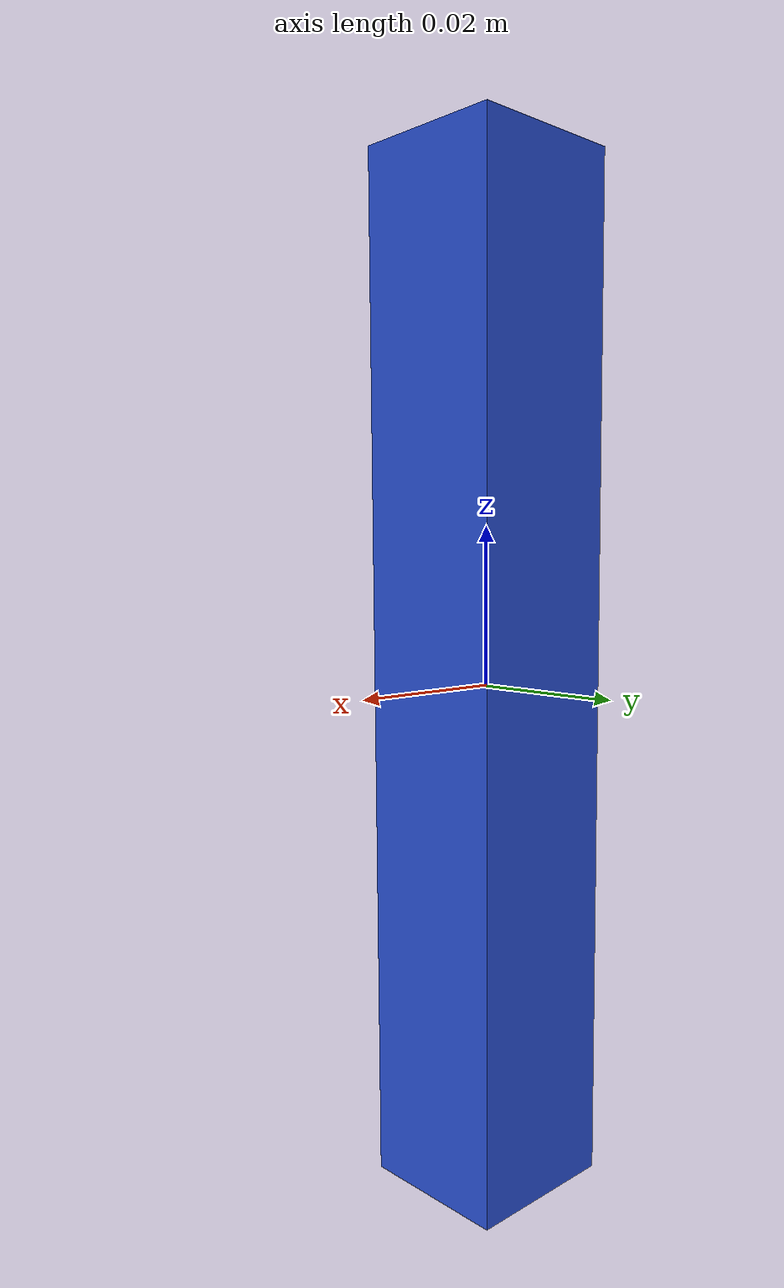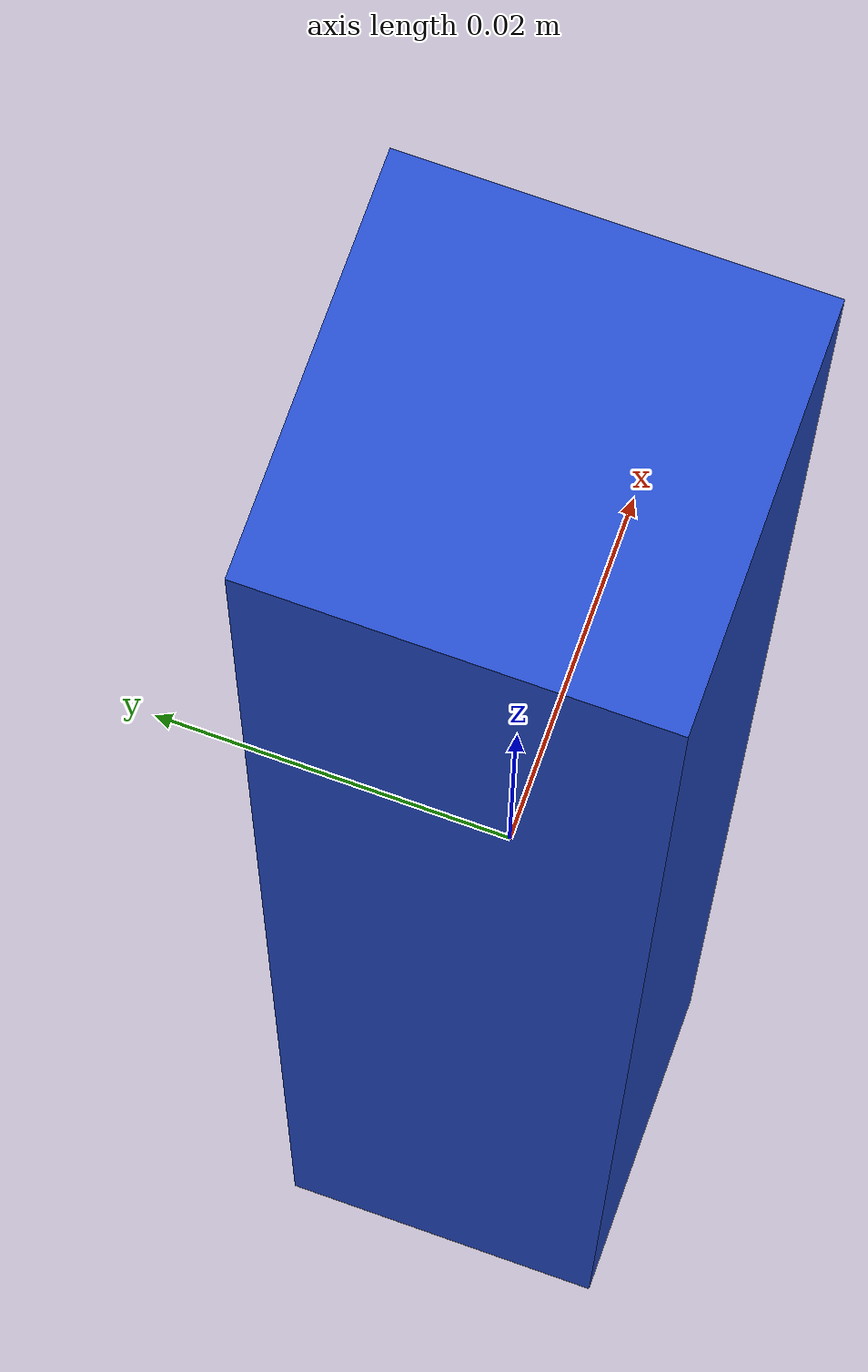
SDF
<?xml version="1.0" ?>
<sdf version="1.6">
  <model name="pickup_box"> <pose>0 0 0 0 0 0</pose> <link name="box_link">
      <inertial>
        <mass>0.5</mass>
        <inertia ixx="0.000833" ixy="0" ixz="0" iyy="0.000833" iyz="0" izz="0.000833"/>
      </inertial>
      <collision name="collision">
        <geometry>
          <box><size>0.02 0.02 0.13</size></box>
        </geometry>
      </collision>
      <visual name="visual">
        <geometry>
          <box><size>0.02 0.02 0.13</size></box>
        </geometry>
        <material>
          <script>
            <uri>file://media/materials/scripts/gazebo.material</uri>
            <name>Gazebo/Blue</name>
          </script>
        </material>
      </visual>
    </link>
  </model>
</sdf>
